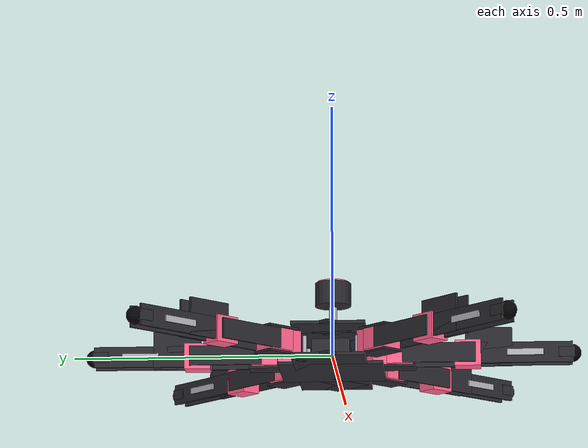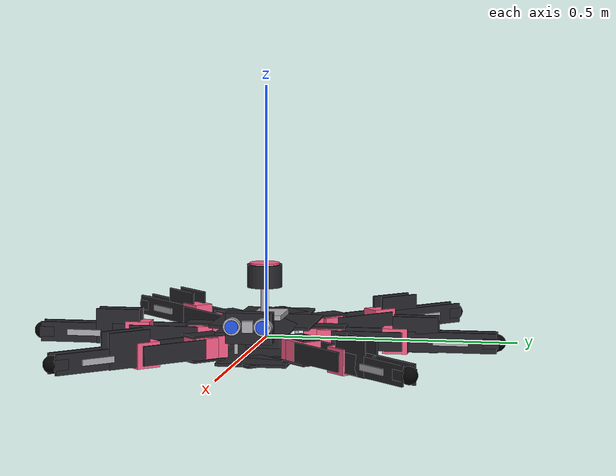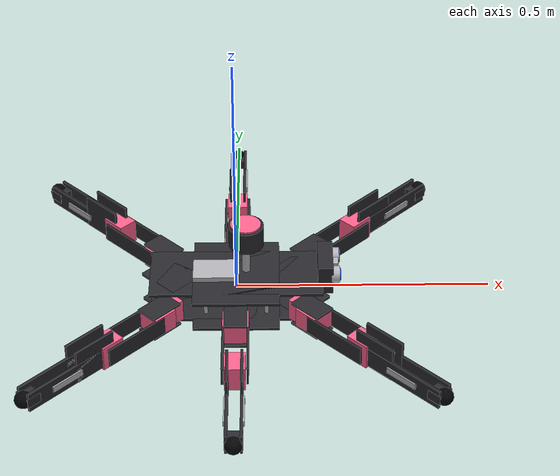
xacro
<?xml version="1.0"?>
<robot name="hexabot" xmlns:xacro="http://www.ros.org/wiki/xacro">
  <xacro:arg name="ns" default="r1"/>
  <xacro:arg name="sensors" default="true"/>  <!-- false: no rendering sensors (tests) -->
  <xacro:property name="ns" value="$(arg ns)"/>

  <!-- body -->
  <xacro:property name="body_l" value="0.34"/>
  <xacro:property name="body_w" value="0.20"/>
  <xacro:property name="plate_gap" value="0.06"/>   <!-- distance between the two body plates -->
  <!-- legs -->
  <xacro:property name="coxa_l" value="0.05"/>
  <xacro:property name="femur_l" value="0.11"/>
  <xacro:property name="tibia_l" value="0.20"/>  <!-- longer than the femur: knee sits high, like the kit -->
  <xacro:property name="mount_fx" value="0.13"/>    <!-- front/rear leg mounts -->
  <xacro:property name="mount_fy" value="0.08"/>
  <xacro:property name="mount_my" value="0.10"/>    <!-- middle leg mount -->
  <!-- stance -->
  <xacro:property name="stand_height" value="0.15"/>
  <xacro:property name="stand_reach" value="0.14"/>

  <material name="plate"><color rgba="0.16 0.16 0.18 1"/></material>
  <material name="servo"><color rgba="1.0 0.38 0.55 1"/></material>
  <material name="metal"><color rgba="0.7 0.7 0.72 1"/></material>
  <material name="eye"><color rgba="0.15 0.35 0.95 1"/></material>
  <material name="rubber"><color rgba="0.02 0.02 0.02 1"/></material>

  <xacro:macro name="box_inertia" params="m x y z *origin">
    <inertial><xacro:insert_block name="origin"/><mass value="${m}"/>
      <inertia ixx="${m*(y*y+z*z)/12}" iyy="${m*(x*x+z*z)/12}" izz="${m*(x*x+y*y)/12}" ixy="0" ixz="0" iyz="0"/>
    </inertial>
  </xacro:macro>
  <xacro:macro name="vbox" params="xyz rpy:='0 0 0' size mat">
    <visual><origin xyz="${xyz}" rpy="${rpy}"/><geometry><box size="${size}"/></geometry><material name="${mat}"/></visual>
  </xacro:macro>

  <!-- ===== body ===== -->
  <xacro:macro name="body_plate" params="z">
    <!-- Hexagon-ish plate: long centre strip plus a wider middle section. -->
    <xacro:vbox xyz="0 0 ${z}" size="${body_l} ${body_w*0.7} 0.006" mat="plate"/>
    <xacro:vbox xyz="0 0 ${z}" size="${body_l*0.5} ${body_w} 0.006" mat="plate"/>
    <xacro:vbox xyz="${body_l*0.36} 0 ${z}" rpy="0 0 ${pi/4}" size="0.09 0.09 0.006" mat="plate"/>
    <xacro:vbox xyz="${-body_l*0.36} 0 ${z}" rpy="0 0 ${pi/4}" size="0.09 0.09 0.006" mat="plate"/>
  </xacro:macro>
  <xacro:macro name="coxa_servo" params="x y yaw">
    <xacro:vbox xyz="${x} ${y} 0" rpy="0 0 ${yaw}" size="0.045 0.032 0.045" mat="servo"/>
  </xacro:macro>
  <xacro:macro name="standoff" params="x y">
    <visual><origin xyz="${x} ${y} 0"/><geometry><cylinder radius="0.004" length="${plate_gap}"/></geometry>
      <material name="metal"/></visual>
  </xacro:macro>

  <link name="base_link">
    <xacro:body_plate z="${-plate_gap/2}"/>
    <xacro:body_plate z="${plate_gap/2}"/>
    <xacro:coxa_servo x="${mount_fx}" y="${mount_fy}" yaw="${pi/4}"/>
    <xacro:coxa_servo x="0" y="${mount_my}" yaw="${pi/2}"/>
    <xacro:coxa_servo x="${-mount_fx}" y="${mount_fy}" yaw="${3*pi/4}"/>
    <xacro:coxa_servo x="${mount_fx}" y="${-mount_fy}" yaw="${-pi/4}"/>
    <xacro:coxa_servo x="0" y="${-mount_my}" yaw="${-pi/2}"/>
    <xacro:coxa_servo x="${-mount_fx}" y="${-mount_fy}" yaw="${-3*pi/4}"/>
    <xacro:standoff x="0.06" y="0.05"/>
    <xacro:standoff x="0.06" y="-0.05"/>
    <xacro:standoff x="-0.06" y="0.05"/>
    <xacro:standoff x="-0.06" y="-0.05"/>
    <!-- battery between the plates, controller board on top -->
    <xacro:vbox xyz="-0.02 0 0" size="0.12 0.07 0.035" mat="plate"/>
    <xacro:vbox xyz="-0.04 0 ${plate_gap/2 + 0.008}" size="0.09 0.06 0.01" mat="metal"/>
    <!-- sensor head bracket -->
    <xacro:vbox xyz="${body_l/2 + 0.005} 0 0.045" size="0.03 0.09 0.06" mat="plate"/>
    <collision><geometry><box size="${body_l} ${body_w} ${plate_gap + 0.01}"/></geometry></collision>
    <xacro:box_inertia m="2.2" x="${body_l}" y="${body_w}" z="${plate_gap}"><origin xyz="0 0 -0.01"/></xacro:box_inertia>
  </link>
  <gazebo reference="base_link"><mu1>0.3</mu1><mu2>0.3</mu2></gazebo>

  <!-- ===== legs ===== -->
  <xacro:macro name="leg" params="name x y yaw">
    <link name="${name}_coxa_link">
      <xacro:vbox xyz="${coxa_l*0.6} 0 0" size="0.05 0.05 0.04" mat="servo"/>
      <xacro:vbox xyz="${coxa_l/2} 0 0.024" size="${coxa_l + 0.02} 0.045 0.004" mat="plate"/>
      <xacro:vbox xyz="${coxa_l/2} 0 -0.024" size="${coxa_l + 0.02} 0.045 0.004" mat="plate"/>
      <xacro:box_inertia m="0.07" x="${coxa_l}" y="0.045" z="0.045"><origin xyz="${coxa_l/2} 0 0"/></xacro:box_inertia>
    </link>
    <joint name="${name}_coxa" type="revolute">
      <parent link="base_link"/><child link="${name}_coxa_link"/>
      <origin xyz="${x} ${y} 0" rpy="0 0 ${yaw}"/>
      <axis xyz="0 0 1"/>
      <limit lower="-1.0" upper="1.0" effort="6" velocity="12"/>
      <dynamics damping="0.05"/>
    </joint>

    <link name="${name}_femur_link">
      <xacro:vbox xyz="${femur_l/2} 0.024 0" size="${femur_l + 0.03} 0.004 0.038" mat="plate"/>
      <xacro:vbox xyz="${femur_l/2} -0.024 0" size="${femur_l + 0.03} 0.004 0.038" mat="plate"/>
      <xacro:vbox xyz="${femur_l} 0 0" size="0.05 0.04 0.05" mat="servo"/>
      <collision><origin xyz="${femur_l/2} 0 0"/><geometry><box size="${femur_l} 0.05 0.038"/></geometry></collision>
      <xacro:box_inertia m="0.09" x="${femur_l}" y="0.05" z="0.04"><origin xyz="${femur_l*0.6} 0 0"/></xacro:box_inertia>
    </link>
    <joint name="${name}_femur" type="revolute">
      <parent link="${name}_coxa_link"/><child link="${name}_femur_link"/>
      <origin xyz="${coxa_l} 0 0"/>
      <axis xyz="0 -1 0"/>
      <limit lower="-1.4" upper="1.6" effort="8" velocity="12"/>
      <dynamics damping="0.05"/>
    </joint>

    <link name="${name}_tibia_link">
      <!-- wide near the knee, tapering to the foot, like the kit's tibia plates -->
      <xacro:vbox xyz="${tibia_l*0.5} 0.014 0" size="${tibia_l} 0.005 0.04" mat="plate"/>
      <xacro:vbox xyz="${tibia_l*0.5} -0.014 0" size="${tibia_l} 0.005 0.04" mat="plate"/>
      <xacro:vbox xyz="${tibia_l*0.2} 0.014 0.014" size="${tibia_l*0.45} 0.005 0.07" mat="plate"/>
      <xacro:vbox xyz="${tibia_l*0.2} -0.014 0.014" size="${tibia_l*0.45} 0.005 0.07" mat="plate"/>
      <xacro:vbox xyz="${tibia_l*0.55} 0.018 0" size="${tibia_l*0.35} 0.003 0.012" mat="metal"/>
      <xacro:vbox xyz="${tibia_l*0.55} -0.018 0" size="${tibia_l*0.35} 0.003 0.012" mat="metal"/>
      <xacro:vbox xyz="${tibia_l - 0.012} 0 0" size="0.03 0.034 0.02" mat="plate"/>
      <visual><origin xyz="${tibia_l} 0 0"/><geometry><sphere radius="0.017"/></geometry><material name="rubber"/></visual>
      <collision><origin xyz="${tibia_l*0.45} 0 0"/><geometry><box size="${tibia_l*0.9} 0.03 0.03"/></geometry></collision>
      <collision><origin xyz="${tibia_l} 0 0"/><geometry><sphere radius="0.016"/></geometry></collision>
      <xacro:box_inertia m="0.07" x="${tibia_l}" y="0.01" z="0.04"><origin xyz="${tibia_l*0.4} 0 0"/></xacro:box_inertia>
    </link>
    <joint name="${name}_tibia" type="revolute">
      <parent link="${name}_femur_link"/><child link="${name}_tibia_link"/>
      <origin xyz="${femur_l} 0 0"/>
      <axis xyz="0 -1 0"/>
      <limit lower="-2.7" upper="0.5" effort="8" velocity="12"/>
      <dynamics damping="0.05"/>
    </joint>
    <gazebo reference="${name}_tibia_link"><mu1>1.2</mu1><mu2>1.2</mu2></gazebo>
    <gazebo reference="${name}_femur_link"><mu1>0.5</mu1><mu2>0.5</mu2></gazebo>
  </xacro:macro>

  <xacro:leg name="lf" x="${mount_fx}" y="${mount_fy}" yaw="${pi/4}"/>
  <xacro:leg name="lm" x="0" y="${mount_my}" yaw="${pi/2}"/>
  <xacro:leg name="lr" x="${-mount_fx}" y="${mount_fy}" yaw="${3*pi/4}"/>
  <xacro:leg name="rf" x="${mount_fx}" y="${-mount_fy}" yaw="${-pi/4}"/>
  <xacro:leg name="rm" x="0" y="${-mount_my}" yaw="${-pi/2}"/>
  <xacro:leg name="rr" x="${-mount_fx}" y="${-mount_fy}" yaw="${-3*pi/4}"/>

  <!-- ===== sensors ===== -->
  <!-- 16-ring 3D lidar on a mast, high enough that the swinging knees stay inside its
       minimum range; the tilted field of view (-25..+15 deg) sees the floor from ~0.6 m. -->
  <link name="lidar_link">
    <visual><origin xyz="0 0 -0.055"/><geometry><cylinder radius="0.008" length="0.06"/></geometry><material name="metal"/></visual>
    <visual><geometry><cylinder radius="0.035" length="0.045"/></geometry><material name="plate"/></visual>
    <visual><origin xyz="0 0 0.024"/><geometry><cylinder radius="0.03" length="0.004"/></geometry><material name="servo"/></visual>
    <collision><geometry><cylinder radius="0.035" length="0.045"/></geometry></collision>
    <xacro:box_inertia m="0.2" x="0.07" y="0.07" z="0.045"><origin xyz="0 0 0"/></xacro:box_inertia>
  </link>
  <joint name="lidar_joint" type="fixed">
    <parent link="base_link"/><child link="lidar_link"/>
    <origin xyz="0.02 0 ${plate_gap/2 + 0.095}"/>
  </joint>

  <!-- Sensor head: camera between two "ultrasonic eyes", like the kit. -->
  <link name="camera_link">
    <visual><origin xyz="0 0.03 0" rpy="0 ${pi/2} 0"/><geometry><cylinder radius="0.017" length="0.016"/></geometry><material name="metal"/></visual>
    <visual><origin xyz="0.004 0.03 0" rpy="0 ${pi/2} 0"/><geometry><cylinder radius="0.013" length="0.012"/></geometry><material name="eye"/></visual>
    <visual><origin xyz="0 -0.03 0" rpy="0 ${pi/2} 0"/><geometry><cylinder radius="0.017" length="0.016"/></geometry><material name="metal"/></visual>
    <visual><origin xyz="0.004 -0.03 0" rpy="0 ${pi/2} 0"/><geometry><cylinder radius="0.013" length="0.012"/></geometry><material name="eye"/></visual>
    <visual><geometry><box size="0.012 0.022 0.022"/></geometry><material name="metal"/></visual>
    <xacro:box_inertia m="0.05" x="0.02" y="0.08" z="0.03"><origin xyz="0 0 0"/></xacro:box_inertia>
  </link>
  <joint name="camera_joint" type="fixed">
    <parent link="base_link"/><child link="camera_link"/>
    <origin xyz="${body_l/2 + 0.025} 0 0.05"/>
  </joint>
  <!-- ROS optical convention: z forward, x right, y down. -->
  <link name="camera_optical_frame"/>
  <joint name="camera_optical_joint" type="fixed">
    <parent link="camera_link"/><child link="camera_optical_frame"/>
    <origin rpy="${-pi/2} 0 ${-pi/2}"/>
  </joint>

  <link name="imu_link"/>
  <joint name="imu_joint" type="fixed">
    <parent link="base_link"/><child link="imu_link"/>
  </joint>

  <xacro:include filename="$(find rescue_description)/urdf/sensors.xacro"/>
  <xacro:if value="$(arg sensors)">
    <xacro:rescue_sensors ns="${ns}"/>
  </xacro:if>

  <!-- ===== locomotion and state ===== -->
  <gazebo>
    <plugin filename="RescueHexWalk" name="rescue_hexabot::HexWalk">
      <topic>/${ns}/cmd_vel</topic>
      <!-- tripod A: lf, rm, lr   tripod B: rf, lm, rr -->
      <leg><name>lf</name><mount_x>${mount_fx}</mount_x><mount_y>${mount_fy}</mount_y><mount_yaw>${pi/4}</mount_yaw><group>0</group></leg>
      <leg><name>lm</name><mount_x>0</mount_x><mount_y>${mount_my}</mount_y><mount_yaw>${pi/2}</mount_yaw><group>1</group></leg>
      <leg><name>lr</name><mount_x>${-mount_fx}</mount_x><mount_y>${mount_fy}</mount_y><mount_yaw>${3*pi/4}</mount_yaw><group>0</group></leg>
      <leg><name>rf</name><mount_x>${mount_fx}</mount_x><mount_y>${-mount_fy}</mount_y><mount_yaw>${-pi/4}</mount_yaw><group>1</group></leg>
      <leg><name>rm</name><mount_x>0</mount_x><mount_y>${-mount_my}</mount_y><mount_yaw>${-pi/2}</mount_yaw><group>0</group></leg>
      <leg><name>rr</name><mount_x>${-mount_fx}</mount_x><mount_y>${-mount_fy}</mount_y><mount_yaw>${-3*pi/4}</mount_yaw><group>1</group></leg>
      <coxa_length>${coxa_l}</coxa_length>
      <femur_length>${femur_l}</femur_length>
      <tibia_length>${tibia_l}</tibia_length>
      <stand_height>${stand_height}</stand_height>
      <stand_reach>${stand_reach}</stand_reach>
      <step_height>0.11</step_height>
      <max_stride>0.12</max_stride>
      <duty>0.55</duty>
      <min_frequency>1.0</min_frequency>
      <max_frequency>3.0</max_frequency>
      <max_speed>0.45</max_speed>
      <max_yaw_rate>2.0</max_yaw_rate>
      <accel>1.0</accel>
      <yaw_accel>4.0</yaw_accel>
      <kp>30</kp>
      <max_joint_velocity>12</max_joint_velocity>
      <cmd_timeout>0.5</cmd_timeout>
      <climb_tilt_start>${radians(10)}</climb_tilt_start>
      <climb_tilt_full>${radians(25)}</climb_tilt_full>
      <climb_min_scale>0.4</climb_min_scale>
      <!-- joint states at 30 Hz (Gazebo's JointStatePublisher sends 250 Hz and floods /tf) -->
      <terrain_topic>/${ns}/terrain_ahead</terrain_topic>
      <max_step_height>0.15</max_step_height>
      <climb_slowdown>0.55</climb_slowdown>
      <joint_state_topic>/${ns}/joint_states</joint_state_topic>
      <joint_state_rate>30</joint_state_rate>
      <level_gain>4.0</level_gain>
      <level_limit>0.06</level_limit>
    </plugin>
  </gazebo>
  <xacro:ground_truth_odom ns="${ns}"/>
</robot>
